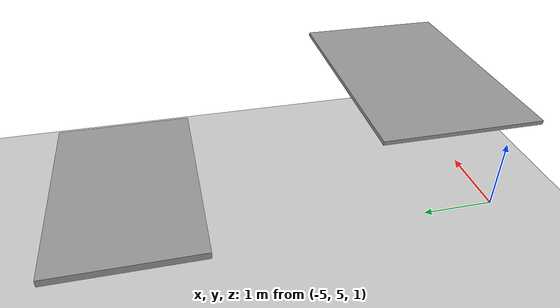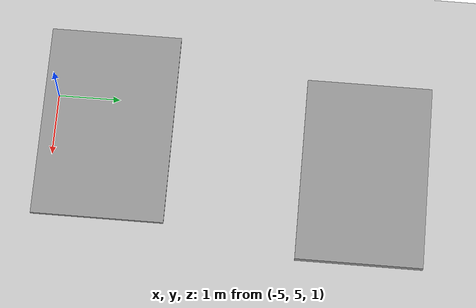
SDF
<sdf version="1.6">
 <world name="default">
  <model name="ground_plane">
   <static>1</static>
   <link name="link">
    <collision name="collision">
     <geometry><plane><normal>0 0 1</normal><size>100 100</size></plane></geometry>
     <surface><friction><ode><mu>100</mu><mu2>50</mu2></ode></friction></surface>
    </collision>
    <visual name="visual">
     <cast_shadows>0</cast_shadows>
     <geometry><plane><normal>0 0 1</normal><size>100 100</size></plane></geometry>
     <material>
      <script><uri>file://media/materials/scripts/gazebo.material</uri><name>Gazebo/Grey</name></script>
     </material>
    </visual>
   </link>
  </model>
  <model name="stairs_platform45">
   <pose>-3.953592 10.0 1.325 0 -0 0</pose>
   <link name="link">
    <collision name="collision">
     <geometry><box><size>3 2 0.1</size></box></geometry>
     <surface><friction><ode><mu>100</mu><mu2>50</mu2></ode></friction></surface>
     <pose>0 0 0.05 0 -0 0</pose>
    </collision>
    <visual name="visual">
     <cast_shadows>0</cast_shadows>
     <geometry><box><size>3 2 0.1</size></box></geometry>
     <material>
      <script><uri>file://media/materials/scripts/gazebo.material</uri><name>Gazebo/Grey</name></script>
     </material>
    </visual>
   </link>
   <static>1</static>
  </model>
  <model name="stairs_platform5">
   <pose>-3.953592 6.0 2.65 0 -0 0</pose>
   <link name="link">
    <collision name="collision">
     <geometry><box><size>3 2 0.05</size></box></geometry>
     <surface><friction><ode><mu>100</mu><mu2>50</mu2></ode></friction></surface>
     <pose>0 0 0.025 0 -0 0</pose>
    </collision>
    <visual name="visual">
     <cast_shadows>0</cast_shadows>
     <geometry><box><size>3 2 0.05</size></box></geometry>
     <material>
      <script><uri>file://media/materials/scripts/gazebo.material</uri><name>Gazebo/Grey</name></script>
     </material>
    </visual>
   </link>
   <static>1</static>
  </model>
 </world>
</sdf>
